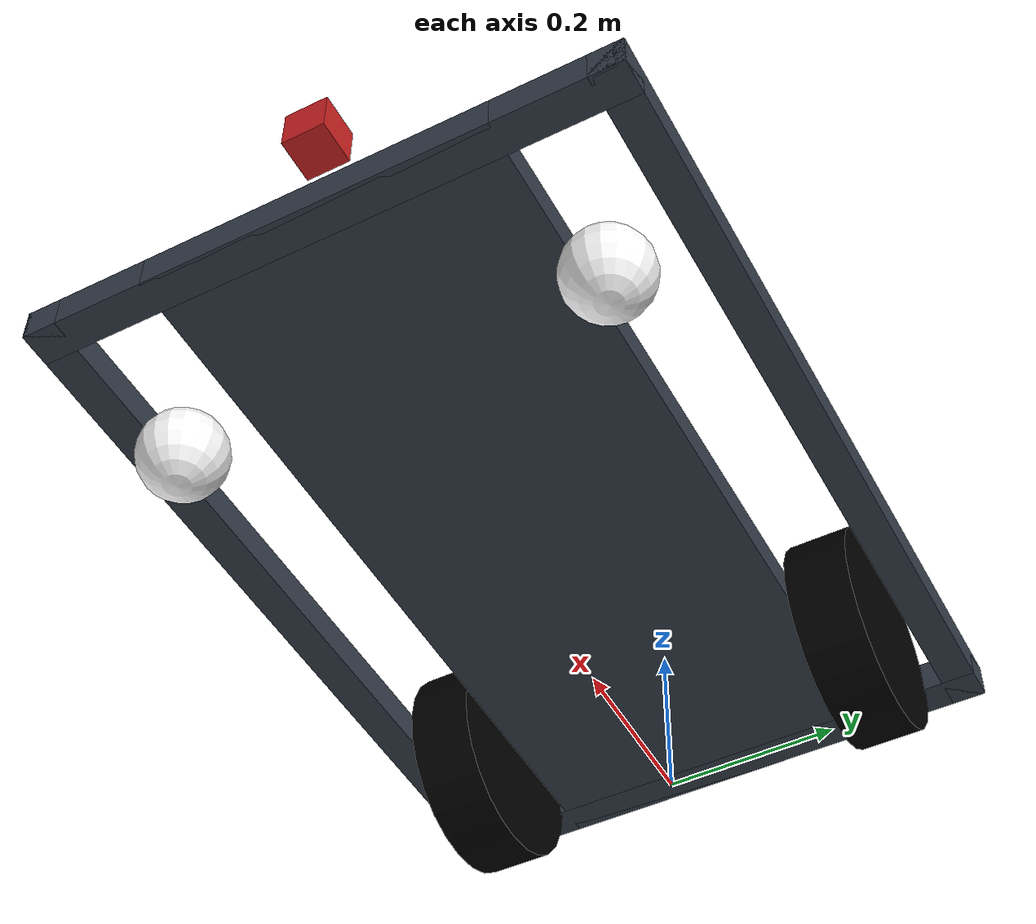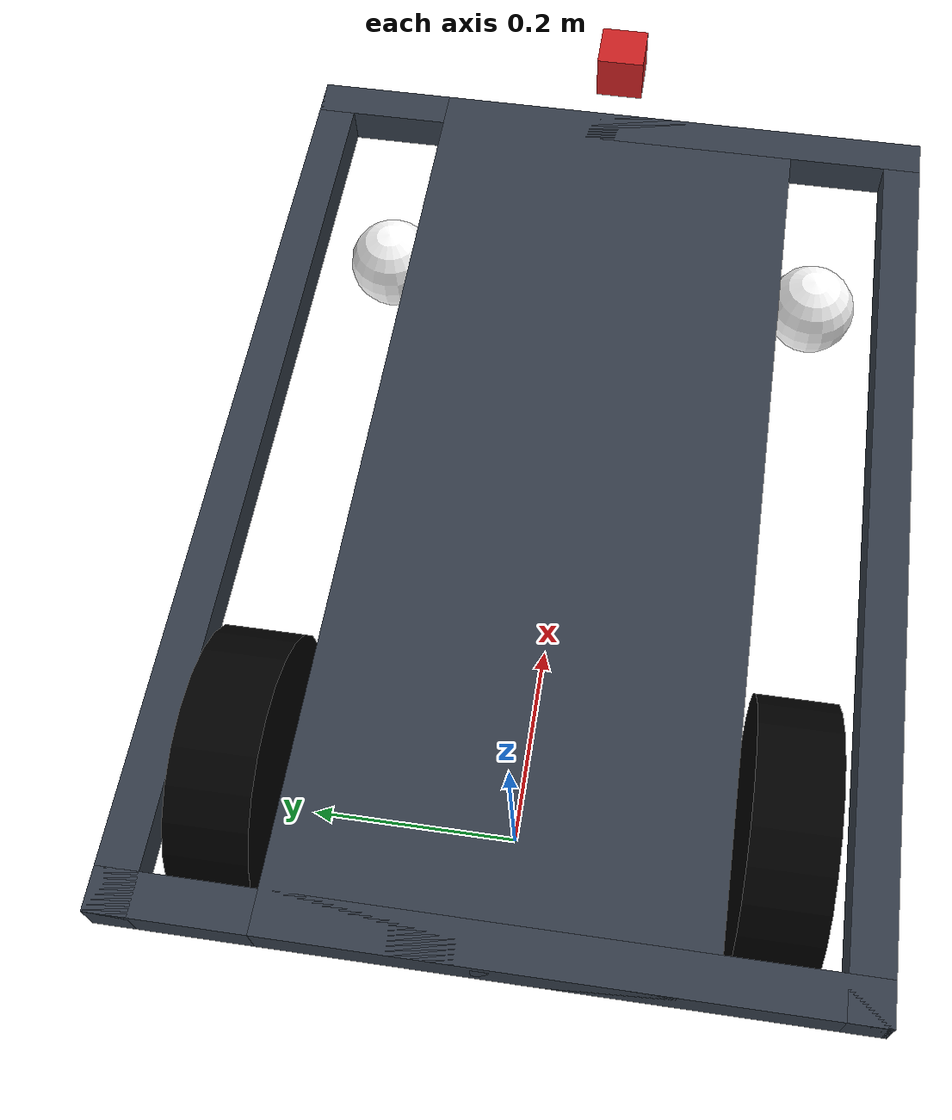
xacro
<?xml version="1.0"?>
<!-- Maurice Grassley-->
<robot name="maurice" xmlns:xacro="http://www.ros.org/wiki/xacro">

  <!-- Constants for robot dimensions -->
  <xacro:property name="PI" value="3.1415926535897931"/>
  <xacro:property name="mass" value="1" />
  <xacro:property name="chassis_length" value="0.97" />
	<xacro:property name="chassis_width" value="0.4" />
	<xacro:property name="chassis_stance" value="0.145" />
	<xacro:property name="chassis_mass" value="3" />
	<xacro:property name="beam_size" value="0.04" />
	<xacro:property name="beam_mass" value="3" />
	<xacro:property name="full_chassis_width" value="0.69" />
	<xacro:property name="wheel_track" value="0.49" />
	<xacro:property name="wheel_base" value="0.65" />
  <xacro:property name="wheel_dia" value="0.25" />
  <xacro:property name="wheel_width" value="0.075" />
	<xacro:property name="wheel_offset" value="0.02" />
	<xacro:property name="wheel_mass" value="1" />
	<xacro:property name="caster_size" value="0.05" />
  <xacro:property name="camera_size" value="0.05" />
	<xacro:property name="camera_height" value="0.1" />
  <xacro:property name="imu_offset" value="0.15" />
  <xacro:property name="imu_size" value="0.02" />
  <xacro:property name="axel_offset" value="0.05" /> <!-- Space btw top of beam and the each joint -->

  <!-- Import all Gazebo-customization elements, including Gazebo colors -->
  <xacro:include filename="$(find maurice_description)/urdf/maurice.gazebo" />
  <!-- Import Rviz colors -->
  <xacro:include filename="$(find maurice_description)/urdf/materials.xacro" />
	<!-- Import macros -->
  <xacro:include filename="$(find maurice_description)/urdf/macros.xacro" />

	<!-- Base Footprint (ground) -->
	<link name="base_footprint" />

	<!-- Base Link -->
	<link name="base_link" />
	<joint name="base_footprint_to_base_link" type="fixed">
    <parent link="base_footprint"/>
    <child link="base_link"/>
    <origin rpy="0 0 0" xyz="0 0 ${chassis_stance}"/>
    <axis xyz="0 0 0"/>
  </joint>

  <!-- Chassis (Main Center) -->
  <link name="chassis">
    <collision>
      <origin xyz="0 0 0" rpy="0 0 0"/>
      <geometry>
				<box size="${chassis_length} ${chassis_width} ${beam_size}"/>
      </geometry>
    </collision>

    <visual>
      <origin xyz="0 0 0" rpy="0 0 0"/>
      <geometry>
				<box size="${chassis_length} ${chassis_width} ${beam_size}"/>
      </geometry>
      <material name="blue"/>
    </visual>

		<inertial>
      <origin xyz="0 0 0" rpy="0 0 0"/>
      <mass value="${chassis_mass}"/>
			<xacro:box_inertia m="${chassis_mass}" x="${chassis_length}" y="${chassis_width}" z="${beam_size}" />
    </inertial>
  </link>
  <joint name="base_link_to_chassis" type="fixed">
    <parent link="base_link"/>
    <child link="chassis"/>
    <origin rpy="0 0 0" xyz="${wheel_base/2} 0 0"/>
    <axis xyz="0 0 0"/>
  </joint>

	<!-- Front Beam -->
  <link name="front_beam">
    <collision>
      <origin xyz="0 0 0" rpy="0 0 0"/>
      <geometry>
				<box size="${beam_size} ${full_chassis_width} ${beam_size}"/>
      </geometry>
    </collision>

    <visual>
      <origin xyz="0 0 0" rpy="0 0 0"/>
      <geometry>
				<box size="${beam_size} ${full_chassis_width} ${beam_size}"/>
      </geometry>
      <material name="blue"/>
    </visual>

		<inertial>
      <origin xyz="0 0 0" rpy="0 0 0"/>
      <mass value="${beam_mass}"/>
			<xacro:box_inertia m="${beam_mass}" x="${beam_size}" y="${full_chassis_width}" z="${beam_size}" />
    </inertial>
  </link>
  <joint name="chassis_to_front_beam" type="fixed">
    <parent link="chassis"/>
    <child link="front_beam"/>
    <origin rpy="0 0 0" xyz="${chassis_length/2 - beam_size/2} 0 0"/>
    <axis xyz="0 0 0"/>
  </joint>

	  <!-- Rear Beam -->
  <link name="rear_beam">
    <collision>
      <origin xyz="0 0 0" rpy="0 0 0"/>
      <geometry>
				<box size="${beam_size} ${full_chassis_width} ${beam_size}"/>
      </geometry>
    </collision>

    <visual>
      <origin xyz="0 0 0" rpy="0 0 0"/>
      <geometry>
				<box size="${beam_size} ${full_chassis_width} ${beam_size}"/>
      </geometry>
      <material name="blue"/>
    </visual>

		<inertial>
      <origin xyz="0 0 0" rpy="0 0 0"/>
      <mass value="${beam_mass}"/>
			<xacro:box_inertia m="${beam_mass}" x="${beam_size}" y="${full_chassis_width}" z="${beam_size}" />
    </inertial>
  </link>
  <joint name="chassis_to_rear_beam" type="fixed">
    <parent link="chassis"/>
    <child link="rear_beam"/>
    <origin rpy="0 0 0" xyz="-${chassis_length/2 - beam_size/2} 0 0"/>
    <axis xyz="0 0 0"/>
  </joint>

	<!-- Right Beam -->
  <link name="right_beam">
    <collision>
      <origin xyz="0 0 0" rpy="0 0 0"/>
      <geometry>
				<box size="${chassis_length} ${beam_size} ${beam_size}"/>
      </geometry>
    </collision>

    <visual>
      <origin xyz="0 0 0" rpy="0 0 0"/>
      <geometry>
				<box size="${chassis_length} ${beam_size} ${beam_size}"/>
      </geometry>
      <material name="blue"/>
    </visual>

		<inertial>
      <origin xyz="0 0 0" rpy="0 0 0"/>
      <mass value="${beam_mass}"/>
			<xacro:box_inertia m="${beam_mass}" x="${chassis_length}" y="${beam_size}" z="${beam_size}" />
    </inertial>
  </link>
  <joint name="chassis_to_right_beam" type="fixed">
    <parent link="chassis"/>
    <child link="right_beam"/>
    <origin rpy="0 0 0" xyz="0 -${full_chassis_width/2 - beam_size/2} 0"/>
    <axis xyz="0 0 0"/>
  </joint>

	<!-- Left Beam -->
  <link name="left_beam">
    <collision>
      <origin xyz="0 0 0" rpy="0 0 0"/>
      <geometry>
				<box size="${chassis_length} ${beam_size} ${beam_size}"/>
      </geometry>
    </collision>

    <visual>
      <origin xyz="0 0 0" rpy="0 0 0"/>
      <geometry>
				<box size="${chassis_length} ${beam_size} ${beam_size}"/>
      </geometry>
      <material name="blue"/>
    </visual>

		<inertial>
      <origin xyz="0 0 0" rpy="0 0 0"/>
      <mass value="${beam_mass}"/>
			<xacro:box_inertia m="${beam_mass}" x="${chassis_length}" y="${beam_size}" z="${beam_size}" />
    </inertial>
  </link>
  <joint name="chassis_to_left_beam" type="fixed">
    <parent link="chassis"/>
    <child link="left_beam"/>
    <origin rpy="0 0 0" xyz="0 ${full_chassis_width/2 - beam_size/2} 0"/>
    <axis xyz="0 0 0"/>
  </joint>

  <!-- right wheel Link -->
  <link name="right_wheel">
    <collision>
      <origin xyz="0 0 0" rpy="-${PI/2} 0 0"/>
      <geometry>
				<cylinder length="${wheel_width}" radius="${wheel_dia/2}"/>
      </geometry>
    </collision>

    <visual>
      <origin xyz="0 0 0" rpy="-${PI/2} 0 0"/>
      <geometry>
				<cylinder length="${wheel_width}" radius="${wheel_dia/2}"/>
      </geometry>
      <material name="black"/>
    </visual>

		<inertial>
      <origin xyz="0 0 0" rpy="-${PI/2} 0 0"/>
      <mass value="${wheel_mass}"/>
			<xacro:cylinder_inertia m="${wheel_mass}" r="${wheel_dia/2}" h="${wheel_width}" />
    </inertial>
  </link>
  <joint name="right_wheel_joint" type="continuous">
    <parent link="base_link"/>
    <child link="right_wheel"/>
    <origin rpy="0 0 0" xyz="0 -${wheel_track/2} -${wheel_offset}"/>
    <axis xyz="0 1 0"/>
    <dynamics damping="0.7"/>
  </joint>

   <!-- left wheel Link -->
  <link name="left_wheel">
    <collision>
      <origin xyz="0 0 0" rpy="${PI/2} 0 0"/>
      <geometry>
				<cylinder length="${wheel_width}" radius="${wheel_dia/2}"/>
      </geometry>
    </collision>

    <visual>
      <origin xyz="0 0 0" rpy="${PI/2} 0 0"/>
      <geometry>
				<cylinder length="${wheel_width}" radius="${wheel_dia/2}"/>
      </geometry>
      <material name="black"/>
    </visual>

    <inertial>
      <origin xyz="0 0 0" rpy="${PI/2} 0 0"/>
      <mass value="${wheel_mass}"/>
			<xacro:cylinder_inertia m="${wheel_mass}" r="${wheel_dia/2}" h="${wheel_width}" />
    </inertial>
  </link>
  <joint name="left_wheel_joint" type="continuous">
    <parent link="base_link"/>
    <child link="left_wheel"/>
    <origin rpy="0 0 0" xyz="0 ${wheel_track/2} -${wheel_offset}"/>
    <axis xyz="0 1 0"/>
    <dynamics damping="0.7"/>
  </joint>

	<!--Caster Right  -->
  <link name="caster_right">
		<collision>
      <geometry>
        <sphere radius="${caster_size}"/>
      </geometry>
      <origin rpy="0 0 0" xyz="0 0 0"/>
    </collision>

    <visual>
      <origin rpy="0 0 0" xyz="0 0 0"/>
      <geometry>
        <sphere radius="${caster_size}"/>
      </geometry>
      <material name="invisible"/>
    </visual>

		<inertial>
      <origin xyz="0 0 0" rpy="0 0 0"/>
      <mass value="0.01"/>
			<xacro:sphere_inertia m="0.01" r="${caster_size}" />
    </inertial>
  </link>
  <joint name="base_link_to_caster_right" type="fixed">
    <parent link="base_link"/>
    <child link="caster_right"/>
    <origin rpy="0 0 0" xyz="${wheel_base} -${wheel_track/2} -${wheel_dia/2 + wheel_offset - caster_size}"/>
  </joint>

	<!--Caster Left  -->
  <link name="caster_left">
		<collision>
      <geometry>
        <sphere radius="${caster_size}"/>
      </geometry>
      <origin rpy="0 0 0" xyz="0 0 0"/>
    </collision>

    <visual>
      <origin rpy="0 0 0" xyz="0 0 0"/>
      <geometry>
        <sphere radius="${caster_size}"/>
      </geometry>
      <material name="invisible"/>
    </visual>

		<inertial>
      <origin xyz="0 0 0" rpy="0 0 0"/>
      <mass value="0.01"/>
			<xacro:sphere_inertia m="0.01" r="${caster_size}" />
    </inertial>
  </link>
  <joint name="base_link_to_caster_left" type="fixed">
    <parent link="base_link"/>
    <child link="caster_left"/>
    <origin rpy="0 0 0" xyz="${wheel_base} ${wheel_track/2} -${wheel_dia/2 + wheel_offset - caster_size}"/>
  </joint>

  <!-- IMU -->
  <link name="imu_link">
    <collision>
      <origin xyz="0 0 0" rpy="0 0 0"/>
      <geometry>
				<box size="${imu_size} ${imu_size} ${imu_size}"/>
      </geometry>
    </collision>

    <visual>
      <origin xyz="0 0 0" rpy="0 0 0"/>
      <geometry>
	<box size="${imu_size} ${imu_size} ${imu_size}"/>
      </geometry>
      <material name="blue"/>
    </visual>

    <inertial>
      <mass value="1e-5" />
      <origin xyz="0 0 0" rpy="0 0 0"/>
      <inertia ixx="1e-6" ixy="0" ixz="0" iyy="1e-6" iyz="0" izz="1e-6" />
    </inertial>
  </link>
  <joint name="base_link_to_imu_link" type="fixed">
		<parent link="base_link"/>
    <child link="imu_link"/>
    <axis xyz="0 0 0" />
    <origin xyz="-${imu_offset} 0 0" rpy="0 0 0"/>
  </joint>

  <!-- Camera -->
  <link name="camera_link">
    <collision>
      <origin xyz="0 0 0" rpy="0 0 0"/>
      <geometry>
				<box size="${camera_size} ${camera_size} ${camera_size}"/>
      </geometry>
    </collision>

    <visual>
      <origin xyz="0 0 0" rpy="0 0 0"/>
      <geometry>
	<box size="${camera_size} ${camera_size} ${camera_size}"/>
      </geometry>
      <material name="red"/>
    </visual>

    <inertial>
      <mass value="1e-5" />
      <origin xyz="0 0 0" rpy="0 0 0"/>
      <inertia ixx="1e-6" ixy="0" ixz="0" iyy="1e-6" iyz="0" izz="1e-6" />
    </inertial>
  </link>
  <joint name="chassis_to_camera" type="fixed">
		<parent link="chassis"/>
    <child link="camera_link"/>
    <axis xyz="0 1 0" />
    <origin xyz="${chassis_length/2} 0 ${camera_height}" rpy="0 0 0"/>
  </joint>

  <!-- generate an optical frame http://www.ros.org/reps/rep-0103.html#suffix-frames
      so that ros and opencv can operate on the camera frame correctly -->
  <joint name="camera_optical_joint" type="fixed">
    <origin xyz="0 0 0" rpy="${-PI/2} 0 ${-PI/2}"/>
    <parent link="camera_link"/>
    <child link="camera_link_optical"/>
  </joint>

  <link name="camera_link_optical">
  </link>

  <transmission name="right_transmission">
    <type>transmission_interface/SimpleTransmission</type>
    <joint name="right_wheel_joint">
      <hardwareInterface>hardware_interface/EffortJointInterface</hardwareInterface>
    </joint>
    <actuator name="right_wheel_motor">
      <hardwareInterface>hardware_interface/EffortJointInterface</hardwareInterface>
      <mechanicalReduction>1</mechanicalReduction>
    </actuator>
  </transmission>

  <transmission name="left_transmission">
    <type>transmission_interface/SimpleTransmission</type>
    <joint name="left_wheel_joint">
      <hardwareInterface>hardware_interface/EffortJointInterface</hardwareInterface>
    </joint>
    <actuator name="left_wheel_motor">
      <hardwareInterface>hardware_interface/EffortJointInterface</hardwareInterface>
      <mechanicalReduction>1</mechanicalReduction>
    </actuator>
  </transmission>

</robot>

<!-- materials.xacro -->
<robot name="maurice" xmlns:xacro="http://www.ros.org/wiki/xacro">
  <material name="black">
    <color rgba="0.0 0.0 0.0 1.0"/>
  </material>
  <material name="blue">
    <color rgba="0.203125 0.23828125 0.28515625 1.0"/>
  </material>
  <material name="green">
    <color rgba="0.0 0.8 0.0 1.0"/>
  </material>
  <material name="grey">
    <color rgba="0.2 0.2 0.2 1.0"/>
  </material>
  <material name="orange">
    <color rgba="1.0 0.423529411765 0.0392156862745 1.0"/>
  </material>
  <material name="brown">
    <color rgba="0.870588235294 0.811764705882 0.764705882353 1.0"/>
  </material>
  <material name="red">
    <color rgba="0.80078125 0.12890625 0.1328125 1.0"/>
  </material>
  <material name="white">
    <color rgba="1.0 1.0 1.0 1.0"/>
  </material>
  <material name="invisible">
    <color rgba="1.0 1.0 1.0 0.0"/>
  </material>
</robot>

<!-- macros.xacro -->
<robot name="maurice" xmlns:xacro="http://www.ros.org/wiki/xacro">
	<xacro:macro name="cylinder_inertia" params="m r h">
		    <inertia  ixx="${m*(3*r*r+h*h)/12.0}" ixy = "0" ixz = "0"
		                iyy="${m*(3*r*r+h*h)/12.0}" iyz = "0"
		                izz="${m*r*r/2}" />
  </xacro:macro>

	<xacro:macro name="box_inertia" params="m x y z">
		      <inertia  ixx="${m*(y*y+z*z)/12.0}" ixy = "0" ixz = "0"
		                iyy="${m*(x*x+z*z)/12.0}" iyz = "0"
		                izz="${m*(x*x+z*z)/12.0}" />
	</xacro:macro>

	<xacro:macro name="sphere_inertia" params="m r">
		      <inertia  ixx="${2*m*r*r/5.0}" ixy = "0" ixz = "0"
		                iyy="${2*m*r*r/5.0}" iyz = "0"
		                izz="${2*m*r*r/5.0}" />
	</xacro:macro>
</robot>
